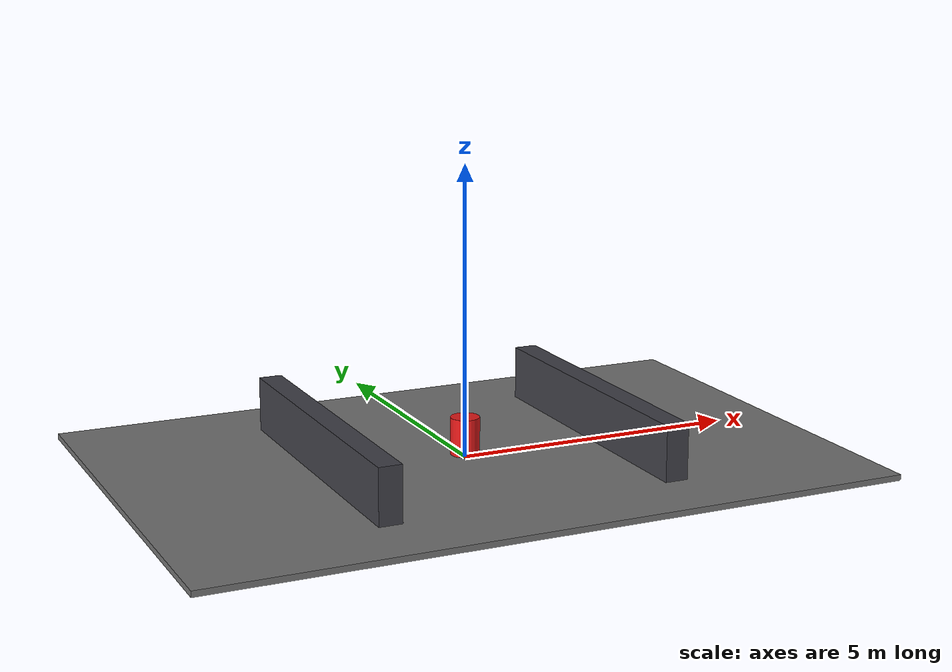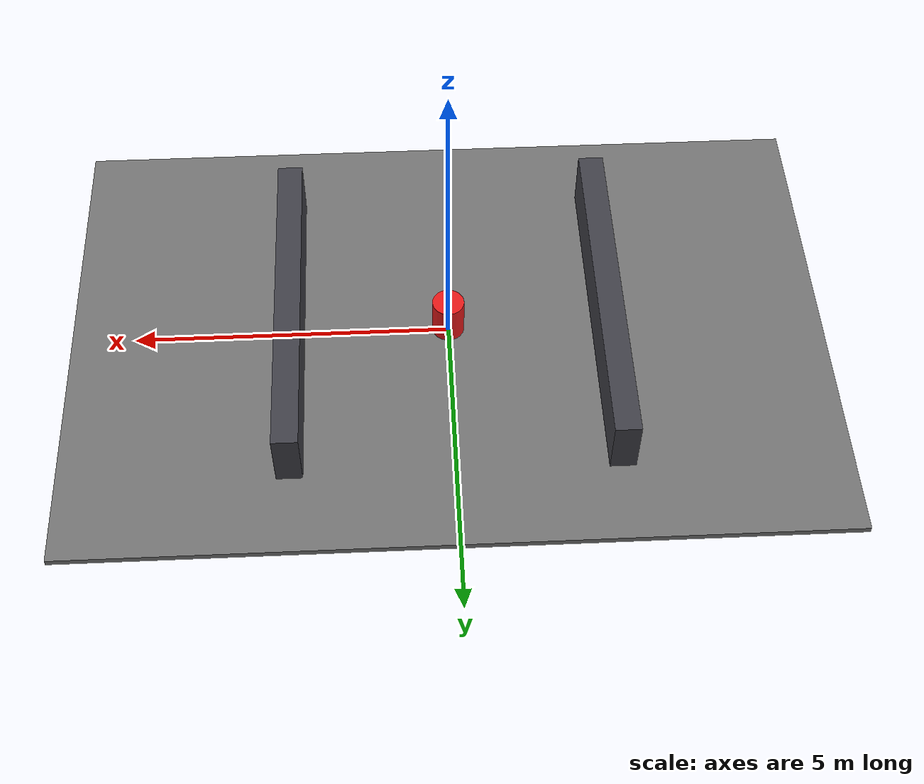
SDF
<?xml version="1.0" ?>
<sdf version="1.10">
  <world name="reliability_room">
    <plugin filename="gz-sim-physics-system" name="gz::sim::systems::Physics"/>
    <plugin filename="gz-sim-user-commands-system" name="gz::sim::systems::UserCommands"/>
    <plugin filename="gz-sim-scene-broadcaster-system" name="gz::sim::systems::SceneBroadcaster"/>
    <plugin filename="gz-sim-sensors-system" name="gz::sim::systems::Sensors">
      <render_engine>ogre2</render_engine>
    </plugin>

    <physics name="default_physics" type="ode">
      <max_step_size>0.001</max_step_size>
      <real_time_factor>1.0</real_time_factor>
    </physics>

    <light type="directional" name="sun">
      <cast_shadows>true</cast_shadows>
      <pose>0 0 10 0 0 0</pose>
      <diffuse>0.8 0.8 0.8 1</diffuse>
      <specular>0.2 0.2 0.2 1</specular>
      <direction>-0.5 0.1 -0.9</direction>
    </light>

    <model name="floor">
      <static>true</static>
      <link name="floor_link">
        <collision name="collision">
          <geometry>
            <box>
              <size>12 8 0.1</size>
            </box>
          </geometry>
        </collision>
        <visual name="visual">
          <geometry>
            <box>
              <size>12 8 0.1</size>
            </box>
          </geometry>
          <material>
            <diffuse>0.45 0.45 0.45 1</diffuse>
          </material>
        </visual>
      </link>
    </model>

    <model name="shelf_left">
      <static>true</static>
      <pose>-2.5 0 0.5 0 0 0</pose>
      <link name="link">
        <collision name="collision">
          <geometry><box><size>0.4 5.5 1.0</size></box></geometry>
        </collision>
        <visual name="visual">
          <geometry><box><size>0.4 5.5 1.0</size></box></geometry>
          <material><diffuse>0.25 0.25 0.28 1</diffuse></material>
        </visual>
      </link>
    </model>

    <model name="shelf_right">
      <static>true</static>
      <pose>2.5 0 0.5 0 0 0</pose>
      <link name="link">
        <collision name="collision">
          <geometry><box><size>0.4 5.5 1.0</size></box></geometry>
        </collision>
        <visual name="visual">
          <geometry><box><size>0.4 5.5 1.0</size></box></geometry>
          <material><diffuse>0.25 0.25 0.28 1</diffuse></material>
        </visual>
      </link>
    </model>

    <model name="dynamic_obstacle_placeholder">
      <static>false</static>
      <pose>0 0 0.35 0 0 0</pose>
      <link name="link">
        <collision name="collision">
          <geometry><cylinder><radius>0.25</radius><length>0.7</length></cylinder></geometry>
        </collision>
        <visual name="visual">
          <geometry><cylinder><radius>0.25</radius><length>0.7</length></cylinder></geometry>
          <material><diffuse>0.9 0.1 0.1 1</diffuse></material>
        </visual>
      </link>
    </model>
  </world>
</sdf>
